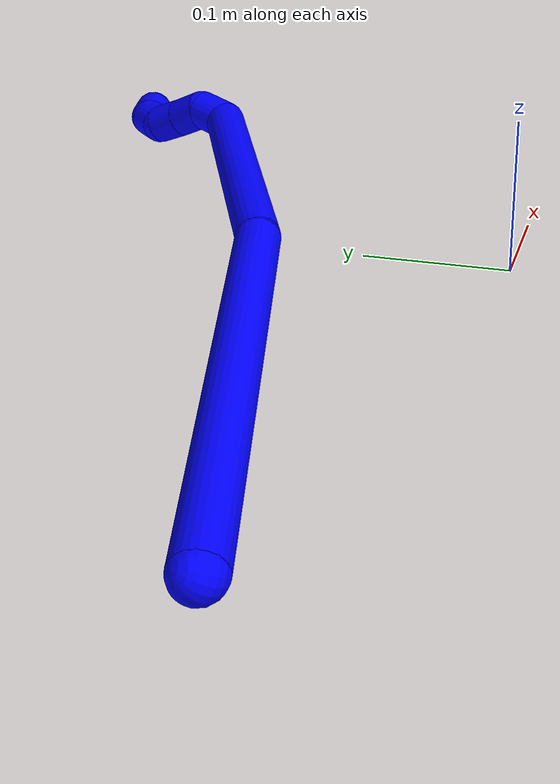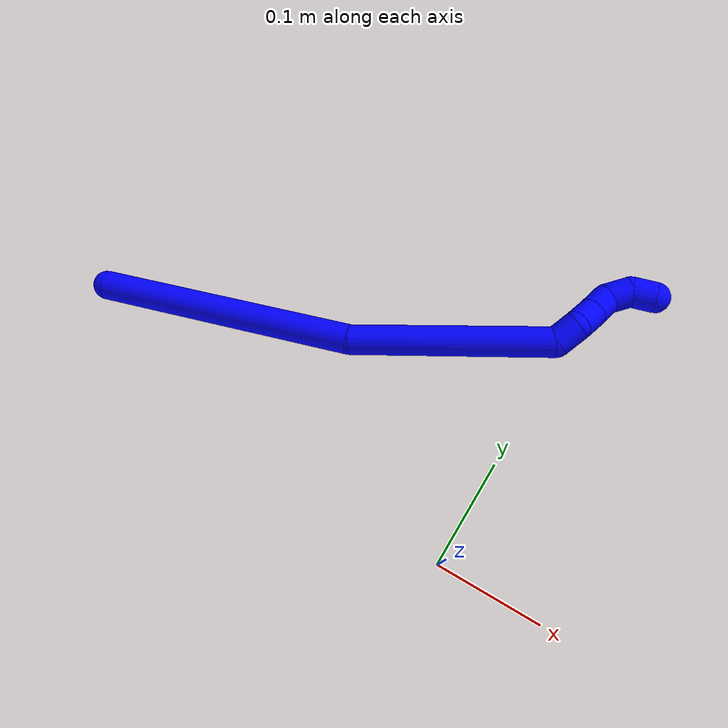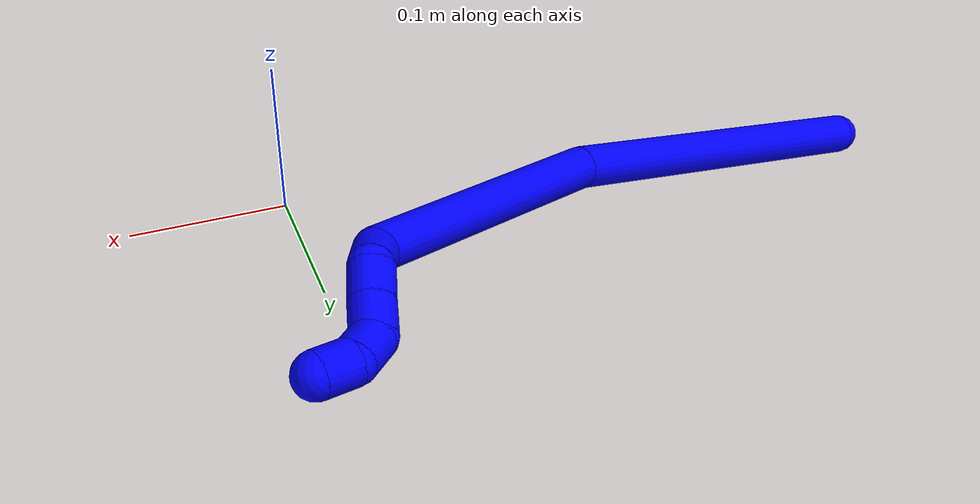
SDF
<sdf version="1.7">
 <world name="default">
  <plugin name="TubeGeneratorPlugin" filename="libtube_generator_plugin.so"/>
  <model name="photoneo_s_sensor">
   <static>1</static>
   <pose>0 0 2 1.57079 1.57079 3.14159</pose>
   <link name="link">
    <inertial><mass>0.1</mass></inertial>
    <sensor name="sensor" type="depth">
     <update_rate>30</update_rate>
     <camera>
      <horizontal_fov>1.22</horizontal_fov>
      <image><width>1920</width><height>1200</height><format>B8G8R8</format></image>
      <clip><near>0.1</near><far>4</far></clip>
      <depth_camera><output>points</output></depth_camera>
     </camera>
     <plugin name="camera_plugin" filename="libgazebo_ros_depth_camera.so">
      <baseline>0.2</baseline>
      <alwaysOn>1</alwaysOn>
      <updateRate>0.0</updateRate>
      <cameraName>camera_ir</cameraName>
      <imageTopicName>/camera/color/image_raw</imageTopicName>
      <cameraInfoTopicName>/camera/color/camera_info</cameraInfoTopicName>
      <depthImageTopicName>/camera/depth/image_raw</depthImageTopicName>
      <depthImageCameraInfoTopicName>/camera/depth/camera_info</depthImageCameraInfoTopicName>
      <pointCloudTopicName>/camera/depth/points</pointCloudTopicName>
      <frameName>fr_optical</frameName>
      <pointCloudCutoff>0.1</pointCloudCutoff>
      <pointCloudCutoffMax>2.0</pointCloudCutoffMax>
      <distortionK1>0</distortionK1>
      <distortionK2>0</distortionK2>
      <distortionK3>0</distortionK3>
      <distortionT1>0</distortionT1>
      <distortionT2>0</distortionT2>
      <CxPrime>0</CxPrime>
      <Cx>0</Cx>
      <Cy>0</Cy>
      <focalLength>0</focalLength>
      <hackBaseline>0</hackBaseline>
     </plugin>
    </sensor>
   </link>
  </model>
  <gravity>0 0 -9.8</gravity>
  <magnetic_field>6e-06 2.3e-05 -4.2e-05</magnetic_field>
  <atmosphere type="adiabatic"/>
  <physics name="default_physics" default="0" type="ode">
   <max_step_size>0.003</max_step_size>
   <real_time_factor>1</real_time_factor>
   <real_time_update_rate>1000</real_time_update_rate>
   <max_contacts>10000</max_contacts>
   <ode>
    <solver>
     <type>quick</type>
     <iters>100</iters>
     <sor>1.3</sor>
     <use_dynamic_moi_rescaling>0</use_dynamic_moi_rescaling>
    </solver>
    <constraints>
     <contact_max_correcting_vel>0</contact_max_correcting_vel>
     <contact_surface_layer>0.001</contact_surface_layer>
     <cfm>0</cfm>
     <erp>0.2</erp>
    </constraints>
   </ode>
  </physics>
  <scene><ambient>0.4 0.4 0.4 1</ambient><background>0.7 0.7 0.7 1</background><shadows>0</shadows></scene>
  <audio><device>default</device></audio>
  <spherical_coordinates>
   <surface_model>EARTH_WGS84</surface_model>
   <latitude_deg>0</latitude_deg>
   <longitude_deg>0</longitude_deg>
   <elevation>0</elevation>
   <heading_deg>0</heading_deg>
  </spherical_coordinates>
  <model name="bin">
   <static>1</static>
   <link name="bottom">
    <collision name="collision-bottom">
     <pose>0 0 -0.01 0 -0 0</pose>
     <geometry><box><size>0.8 0.6 0.02</size></box></geometry>
     <surface>
      <friction><ode><mu>100</mu><mu2>100</mu2></ode></friction>
      <contact><collide_bitmask>65535</collide_bitmask></contact>
     </surface>
    </collision>
   </link>
   <link name="west_wall">
    <collision name="collision-west_wall">
     <pose>-0.41 0 0.1 0 -0 0</pose>
     <geometry><box><size>0.02 0.6 0.2</size></box></geometry>
     <surface>
      <friction><ode><mu>100</mu><mu2>100</mu2></ode></friction>
      <contact><collide_bitmask>65535</collide_bitmask></contact>
     </surface>
    </collision>
   </link>
   <link name="east_wall">
    <collision name="collision-east_wall">
     <pose>0.41 0 0.1 0 -0 0</pose>
     <geometry><box><size>0.02 0.6 0.2</size></box></geometry>
     <surface>
      <friction><ode><mu>100</mu><mu2>100</mu2></ode></friction>
      <contact><collide_bitmask>65535</collide_bitmask></contact>
     </surface>
    </collision>
   </link>
   <link name="south_wall">
    <collision name="collision-south_wall">
     <pose>0 -0.31 0.1 0 -0 0</pose>
     <geometry><box><size>0.8 0.02 0.2</size></box></geometry>
     <surface>
      <friction><ode><mu>100</mu><mu2>100</mu2></ode></friction>
      <contact><collide_bitmask>65535</collide_bitmask></contact>
     </surface>
    </collision>
   </link>
   <link name="north_wall">
    <collision name="collision-north_wall">
     <pose>0 0.31 0.1 0 -0 0</pose>
     <geometry><box><size>0.8 0.02 0.2</size></box></geometry>
     <surface>
      <friction><ode><mu>100</mu><mu2>100</mu2></ode></friction>
      <contact><collide_bitmask>65535</collide_bitmask></contact>
     </surface>
    </collision>
   </link>
  </model>
  <model name="1">
   <static>0</static>
   <link name="1">
    <collision name="collision-cylinder-e_1_1_4">
     <pose>0.085211 0.062552 0.045067 -0.946465 0.835355 -0.446887</pose>
     <geometry><cylinder><radius>0.0125</radius><length>0.229823</length></cylinder></geometry>
     <surface>
      <friction><ode><mu>1.16</mu><mu2>1.16</mu2><slip1>0</slip1><slip2>0</slip2></ode></friction>
      <contact><ode><kp>1e+06</kp><kd>1</kd><max_vel>0</max_vel><min_depth>0.001</min_depth></ode></contact>
     </surface>
    </collision>
    <visual name="visual-cylinder-e_1_1_4">
     <pose>0.085211 0.062552 0.045067 -0.946465 0.835355 -0.446887</pose>
     <geometry><cylinder><radius>0.0125</radius><length>0.229823</length></cylinder></geometry>
     <material><ambient>0 0 1 1</ambient></material>
    </visual>
    <collision name="collision-cylinder-e_2_4_5">
     <pose>0.24392 0.15878 0.111971 -0.995506 1.07096 -0.623742</pose>
     <geometry><cylinder><radius>0.0125</radius><length>0.167488</length></cylinder></geometry>
     <surface>
      <friction><ode><mu>1.16</mu><mu2>1.16</mu2><slip1>0</slip1><slip2>0</slip2></ode></friction>
      <contact><ode><kp>1e+06</kp><kd>1</kd><max_vel>0</max_vel><min_depth>0.001</min_depth></ode></contact>
     </surface>
    </collision>
    <visual name="visual-cylinder-e_2_4_5">
     <pose>0.24392 0.15878 0.111971 -0.995506 1.07096 -0.623742</pose>
     <geometry><cylinder><radius>0.0125</radius><length>0.167488</length></cylinder></geometry>
     <material><ambient>0 0 1 1</ambient></material>
    </visual>
    <collision name="collision-cylinder-e_3_5_6">
     <pose>0.327384 0.193675 0.130022 -2.83036 1.19097 -2.68651</pose>
     <geometry><cylinder><radius>0.0125</radius><length>0.021459</length></cylinder></geometry>
     <surface>
      <friction><ode><mu>1.16</mu><mu2>1.16</mu2><slip1>0</slip1><slip2>0</slip2></ode></friction>
      <contact><ode><kp>1e+06</kp><kd>1</kd><max_vel>0</max_vel><min_depth>0.001</min_depth></ode></contact>
     </surface>
    </collision>
    <visual name="visual-cylinder-e_3_5_6">
     <pose>0.327384 0.193675 0.130022 -2.83036 1.19097 -2.68651</pose>
     <geometry><cylinder><radius>0.0125</radius><length>0.021459</length></cylinder></geometry>
     <material><ambient>0 0 1 1</ambient></material>
    </visual>
    <collision name="collision-cylinder-e_4_6_7">
     <pose>0.346394 0.190388 0.125045 1.82915 1.09508 1.33942</pose>
     <geometry><cylinder><radius>0.0125</radius><length>0.02035</length></cylinder></geometry>
     <surface>
      <friction><ode><mu>1.16</mu><mu2>1.16</mu2><slip1>0</slip1><slip2>0</slip2></ode></friction>
      <contact><ode><kp>1e+06</kp><kd>1</kd><max_vel>0</max_vel><min_depth>0.001</min_depth></ode></contact>
     </surface>
    </collision>
    <visual name="visual-cylinder-e_4_6_7">
     <pose>0.346394 0.190388 0.125045 1.82915 1.09508 1.33942</pose>
     <geometry><cylinder><radius>0.0125</radius><length>0.02035</length></cylinder></geometry>
     <material><ambient>0 0 1 1</ambient></material>
    </visual>
    <collision name="collision-cylinder-e_5_7_8">
     <pose>0.364435 0.181546 0.12214 1.94719 1.09252 1.45901</pose>
     <geometry><cylinder><radius>0.0125</radius><length>0.020267</length></cylinder></geometry>
     <surface>
      <friction><ode><mu>1.16</mu><mu2>1.16</mu2><slip1>0</slip1><slip2>0</slip2></ode></friction>
      <contact><ode><kp>1e+06</kp><kd>1</kd><max_vel>0</max_vel><min_depth>0.001</min_depth></ode></contact>
     </surface>
    </collision>
    <visual name="visual-cylinder-e_5_7_8">
     <pose>0.364435 0.181546 0.12214 1.94719 1.09252 1.45901</pose>
     <geometry><cylinder><radius>0.0125</radius><length>0.020267</length></cylinder></geometry>
     <material><ambient>0 0 1 1</ambient></material>
    </visual>
    <collision name="collision-cylinder-e_6_8_9">
     <pose>0.383609 0.178765 0.120831 -1.31615 1.41407 -1.16739</pose>
     <geometry><cylinder><radius>0.0125</radius><length>0.020607</length></cylinder></geometry>
     <surface>
      <friction><ode><mu>1.16</mu><mu2>1.16</mu2><slip1>0</slip1><slip2>0</slip2></ode></friction>
      <contact><ode><kp>1e+06</kp><kd>1</kd><max_vel>0</max_vel><min_depth>0.001</min_depth></ode></contact>
     </surface>
    </collision>
    <visual name="visual-cylinder-e_6_8_9">
     <pose>0.383609 0.178765 0.120831 -1.31615 1.41407 -1.16739</pose>
     <geometry><cylinder><radius>0.0125</radius><length>0.020607</length></cylinder></geometry>
     <material><ambient>0 0 1 1</ambient></material>
    </visual>
    <collision name="collision-cylinder-e_7_9_2">
     <pose>0.40161 0.18443 0.125922 -0.719846 0.898132 -0.358796</pose>
     <geometry><cylinder><radius>0.0125</radius><length>0.020007</length></cylinder></geometry>
     <surface>
      <friction><ode><mu>1.16</mu><mu2>1.16</mu2><slip1>0</slip1><slip2>0</slip2></ode></friction>
      <contact><ode><kp>1e+06</kp><kd>1</kd><max_vel>0</max_vel><min_depth>0.001</min_depth></ode></contact>
     </surface>
    </collision>
    <visual name="visual-cylinder-e_7_9_2">
     <pose>0.40161 0.18443 0.125922 -0.719846 0.898132 -0.358796</pose>
     <geometry><cylinder><radius>0.0125</radius><length>0.020007</length></cylinder></geometry>
     <material><ambient>0 0 1 1</ambient></material>
    </visual>
    <collision name="collision-sphere-2">
     <pose>0.409434 0.188539 0.130609 0 -0 0</pose>
     <geometry><sphere><radius>0.0125</radius></sphere></geometry>
     <surface>
      <friction><ode><mu>1.16</mu><mu2>1.16</mu2><slip1>0</slip1><slip2>0</slip2></ode></friction>
      <contact><ode><kp>1e+06</kp><kd>1</kd><max_vel>0</max_vel><min_depth>0.001</min_depth></ode></contact>
     </surface>
    </collision>
    <visual name="visual-sphere-2">
     <pose>0.409434 0.188539 0.130609 0 -0 0</pose>
     <geometry><sphere><radius>0.0125</radius></sphere></geometry>
     <material><ambient>0 0 1 1</ambient></material>
    </visual>
    <collision name="collision-sphere-9">
     <pose>0.393786 0.180321 0.121236 0 -0 0</pose>
     <geometry><sphere><radius>0.0125</radius></sphere></geometry>
     <surface>
      <friction><ode><mu>1.16</mu><mu2>1.16</mu2><slip1>0</slip1><slip2>0</slip2></ode></friction>
      <contact><ode><kp>1e+06</kp><kd>1</kd><max_vel>0</max_vel><min_depth>0.001</min_depth></ode></contact>
     </surface>
    </collision>
    <visual name="visual-sphere-9">
     <pose>0.393786 0.180321 0.121236 0 -0 0</pose>
     <geometry><sphere><radius>0.0125</radius></sphere></geometry>
     <material><ambient>0 0 1 1</ambient></material>
    </visual>
    <collision name="collision-sphere-4">
     <pose>0.170421 0.125104 0.090133 0 -0 0</pose>
     <geometry><sphere><radius>0.0125</radius></sphere></geometry>
     <surface>
      <friction><ode><mu>1.16</mu><mu2>1.16</mu2><slip1>0</slip1><slip2>0</slip2></ode></friction>
      <contact><ode><kp>1e+06</kp><kd>1</kd><max_vel>0</max_vel><min_depth>0.001</min_depth></ode></contact>
     </surface>
    </collision>
    <visual name="visual-sphere-4">
     <pose>0.170421 0.125104 0.090133 0 -0 0</pose>
     <geometry><sphere><radius>0.0125</radius></sphere></geometry>
     <material><ambient>0 0 1 1</ambient></material>
    </visual>
    <collision name="collision-sphere-1">
     <geometry><sphere><radius>0.0125</radius></sphere></geometry>
     <surface>
      <friction><ode><mu>1.16</mu><mu2>1.16</mu2><slip1>0</slip1><slip2>0</slip2></ode></friction>
      <contact><ode><kp>1e+06</kp><kd>1</kd><max_vel>0</max_vel><min_depth>0.001</min_depth></ode></contact>
     </surface>
    </collision>
    <visual name="visual-sphere-1">
     <geometry><sphere><radius>0.0125</radius></sphere></geometry>
     <material><ambient>0 0 1 1</ambient></material>
    </visual>
    <collision name="collision-sphere-8">
     <pose>0.373432 0.177208 0.120425 0 -0 0</pose>
     <geometry><sphere><radius>0.0125</radius></sphere></geometry>
     <surface>
      <friction><ode><mu>1.16</mu><mu2>1.16</mu2><slip1>0</slip1><slip2>0</slip2></ode></friction>
      <contact><ode><kp>1e+06</kp><kd>1</kd><max_vel>0</max_vel><min_depth>0.001</min_depth></ode></contact>
     </surface>
    </collision>
    <visual name="visual-sphere-8">
     <pose>0.373432 0.177208 0.120425 0 -0 0</pose>
     <geometry><sphere><radius>0.0125</radius></sphere></geometry>
     <material><ambient>0 0 1 1</ambient></material>
    </visual>
    <collision name="collision-sphere-5">
     <pose>0.317419 0.192457 0.133809 0 -0 0</pose>
     <geometry><sphere><radius>0.0125</radius></sphere></geometry>
     <surface>
      <friction><ode><mu>1.16</mu><mu2>1.16</mu2><slip1>0</slip1><slip2>0</slip2></ode></friction>
      <contact><ode><kp>1e+06</kp><kd>1</kd><max_vel>0</max_vel><min_depth>0.001</min_depth></ode></contact>
     </surface>
    </collision>
    <visual name="visual-sphere-5">
     <pose>0.317419 0.192457 0.133809 0 -0 0</pose>
     <geometry><sphere><radius>0.0125</radius></sphere></geometry>
     <material><ambient>0 0 1 1</ambient></material>
    </visual>
    <collision name="collision-sphere-6">
     <pose>0.337349 0.194893 0.126235 0 -0 0</pose>
     <geometry><sphere><radius>0.0125</radius></sphere></geometry>
     <surface>
      <friction><ode><mu>1.16</mu><mu2>1.16</mu2><slip1>0</slip1><slip2>0</slip2></ode></friction>
      <contact><ode><kp>1e+06</kp><kd>1</kd><max_vel>0</max_vel><min_depth>0.001</min_depth></ode></contact>
     </surface>
    </collision>
    <visual name="visual-sphere-6">
     <pose>0.337349 0.194893 0.126235 0 -0 0</pose>
     <geometry><sphere><radius>0.0125</radius></sphere></geometry>
     <material><ambient>0 0 1 1</ambient></material>
    </visual>
    <collision name="collision-sphere-7">
     <pose>0.355439 0.185883 0.123854 0 -0 0</pose>
     <geometry><sphere><radius>0.0125</radius></sphere></geometry>
     <surface>
      <friction><ode><mu>1.16</mu><mu2>1.16</mu2><slip1>0</slip1><slip2>0</slip2></ode></friction>
      <contact><ode><kp>1e+06</kp><kd>1</kd><max_vel>0</max_vel><min_depth>0.001</min_depth></ode></contact>
     </surface>
    </collision>
    <visual name="visual-sphere-7">
     <pose>0.355439 0.185883 0.123854 0 -0 0</pose>
     <geometry><sphere><radius>0.0125</radius></sphere></geometry>
     <material><ambient>0 0 1 1</ambient></material>
    </visual>
    <inertial>
     <pose>0.195675 0.120106 0.083861 0 -0 0</pose>
     <mass>0.5</mass>
     <inertia>
      <ixx>0.000398</ixx>
      <ixy>0</ixy>
      <ixz>0</ixz>
      <iyy>0.000765</iyy>
      <iyz>0</iyz>
      <izz>-0.001818</izz>
     </inertia>
    </inertial>
   </link>
   <pose>-0.37334 0.062469 0.011948 2.09505 0.066333 0.926818</pose>
  </model>
 </world>
</sdf>
